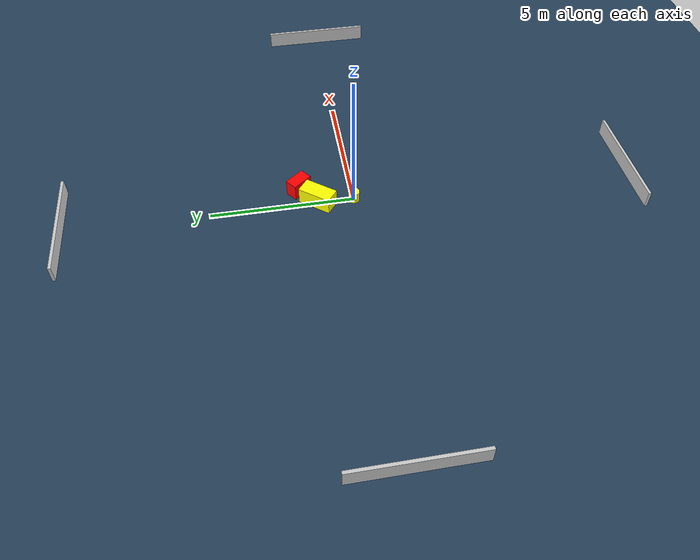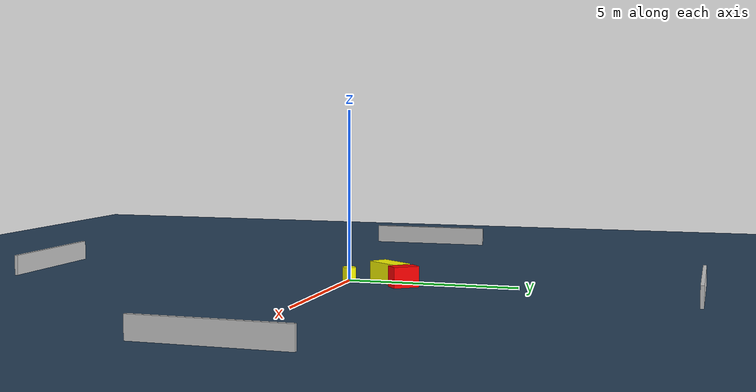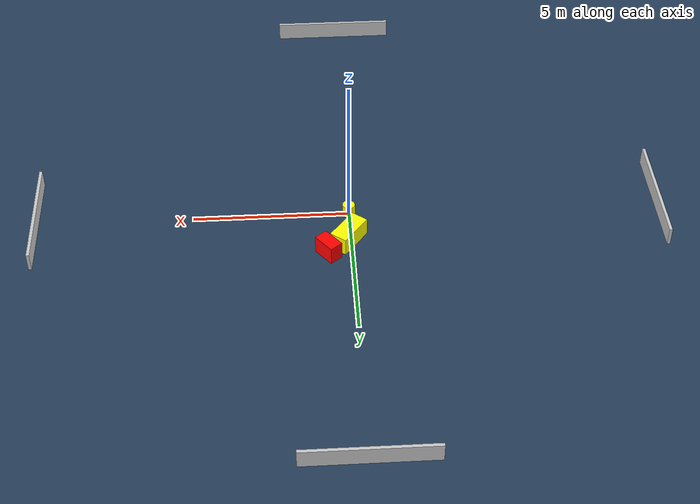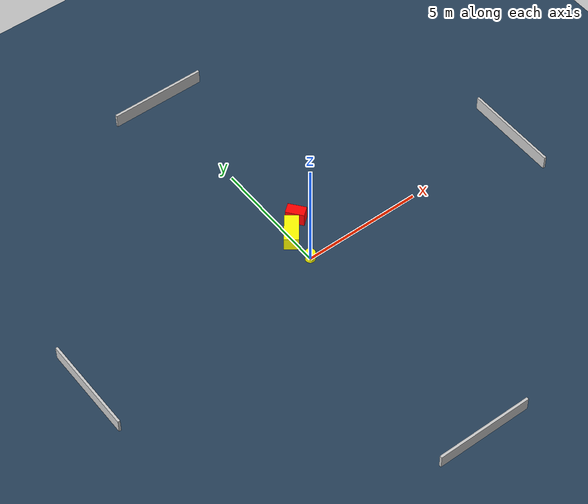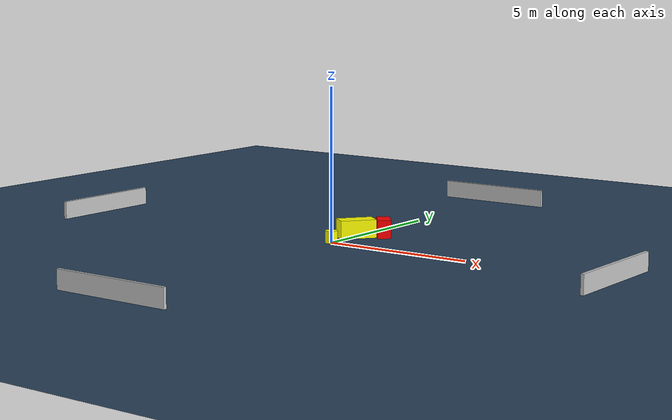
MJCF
<?xml version="1.0" ?>
<mujoco model="generated_environment">
  <option timestep="0.01" integrator="RK4" cone="elliptic"/>
  <default>
    <geom density="1"/>
  </default>
  <asset>
    <texture builtin="gradient" height="3072" name="skybox" rgb1="0.3 0.5 0.7" rgb2="0 0 0" type="skybox" width="512"/>
    <texture builtin="checker" height="300" name="groundplane" rgb1="0.2 0.3 0.4" rgb2="0.1 0.2 0.3" type="2d" width="300"/>
    <material name="groundplane" reflectance="0.2" texrepeat="5 5" texture="groundplane"/>
  </asset>
  <worldbody>
    <light dir="0 0 -1" directional="true" pos="0 0 1.5"/>
    <geom condim="3" friction="0.5 0.005 0.001" material="groundplane" name="floor" pos="0 0 0" size="0 0 0.05" type="plane"/>
    <body name="walls">
      <geom name="wall_1" condim="4" pos="-10.0 0.0 0.3" rgba="0.800000011920929 0.800000011920929 0.800000011920929 1.0" size="0.05 2.0 0.3" type="box"/>
      <geom name="wall_2" condim="4" pos="10.0 0.0 0.3" rgba="0.800000011920929 0.800000011920929 0.800000011920929 1.0" size="0.05 2.0 0.3" type="box"/>
      <geom name="wall_3" condim="4" pos="0.0 -10.0 0.3" rgba="0.800000011920929 0.800000011920929 0.800000011920929 1.0" size="2.0 0.05 0.3" type="box"/>
      <geom name="wall_4" condim="4" pos="0.0 10.0 0.3" rgba="0.800000011920929 0.800000011920929 0.800000011920929 1.0" size="2.0 0.05 0.3" type="box"/>
    </body>
    <body name="robot">
      <joint name="joint_x" type="slide" pos="0 0 0" axis="1 0 0"/>
      <joint name="joint_y" type="slide" pos="0 0 0" axis="0 1 0"/>
      <geom name="robot" type="cylinder" pos="0.0 0.0 0.2" size="0.2 0.2 0.0" mass="5.0" friction="1.0 0.005 0.0001" condim="4" rgba="1.0 1.0 0.0 1.0"/>
    </body>
    <body name="obstacle_1_movable">
      <geom name="obstacle_1_movable" condim="4" pos="0.06970764801480256 1.2574675042954975 0.3" euler="0 0 142.2721077834597" friction="0.0 0.005 0.001" rgba="1.0 1.0 0.0 1.0" size="0.2871235741557475 0.5956568647324212 0.3" type="box" mass="0.1"/>
      <joint type="free"/>
    </body>
    <body name="obstacle_2_static">
      <geom name="obstacle_2_static" condim="4" pos="0.7355956594485 1.8468915417344947 0.3" euler="0 0 218.4365406178306" friction="0.0 0.005 0.001" rgba="1.0 0.0 0.0 1.0" size="0.22187162628827473 0.37912649306519747 0.3" type="box"/>
    </body>
  </worldbody>
  <actuator>
    <motor name="actuator_x" joint="joint_x" gear="1" ctrlrange="-1 1"/>
    <motor name="actuator_y" joint="joint_y" gear="1" ctrlrange="-1 1"/>
  </actuator>
</mujoco>
